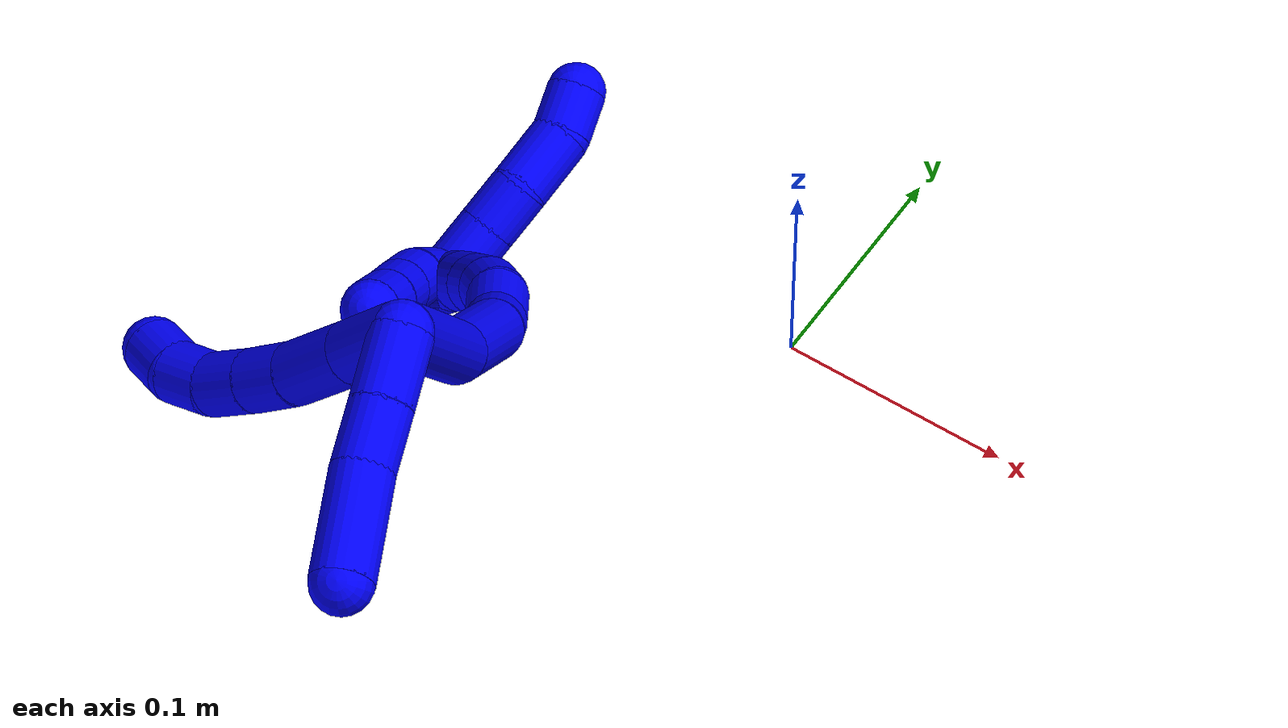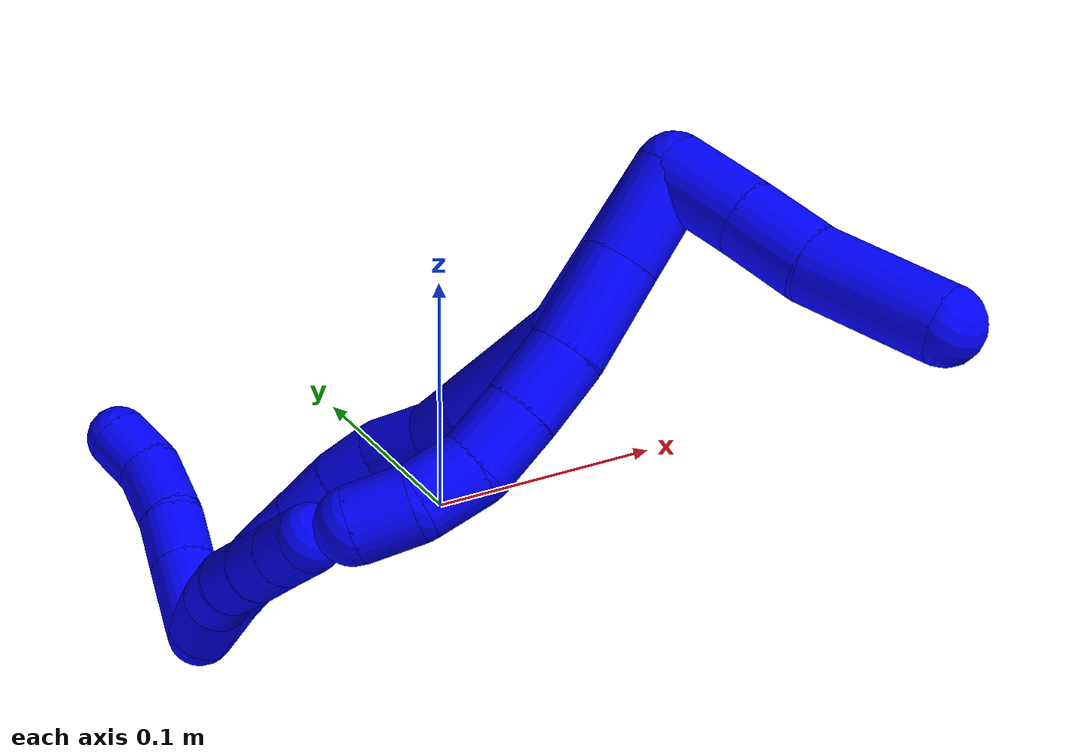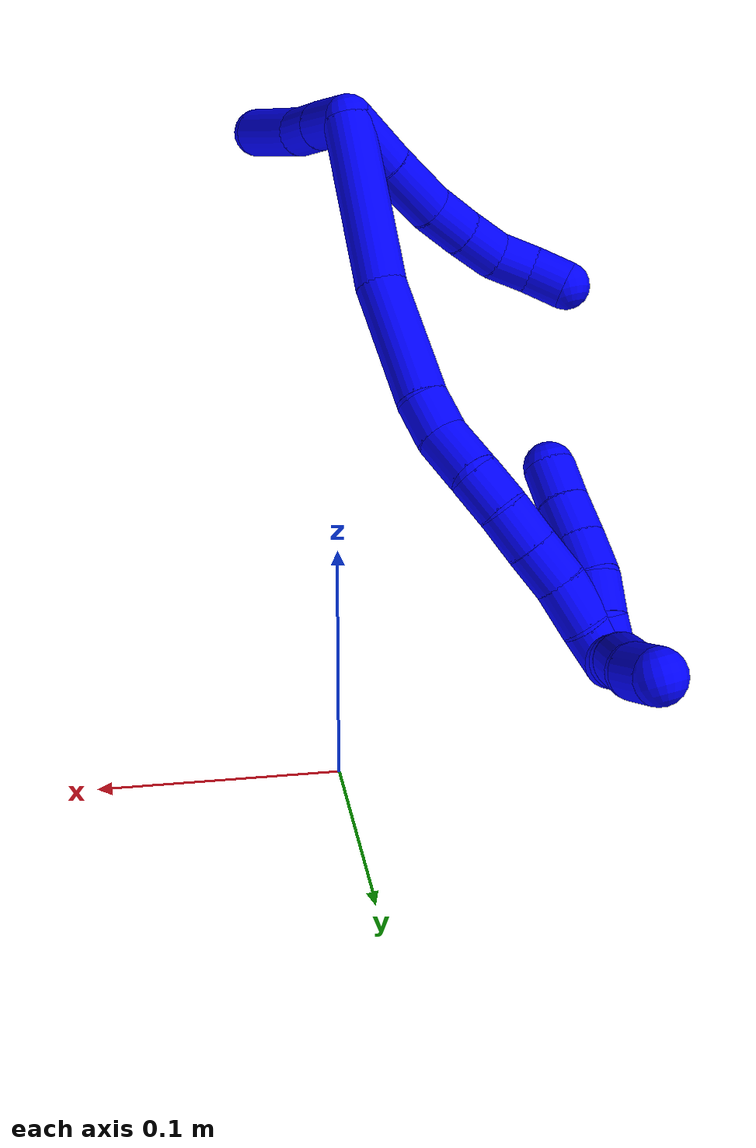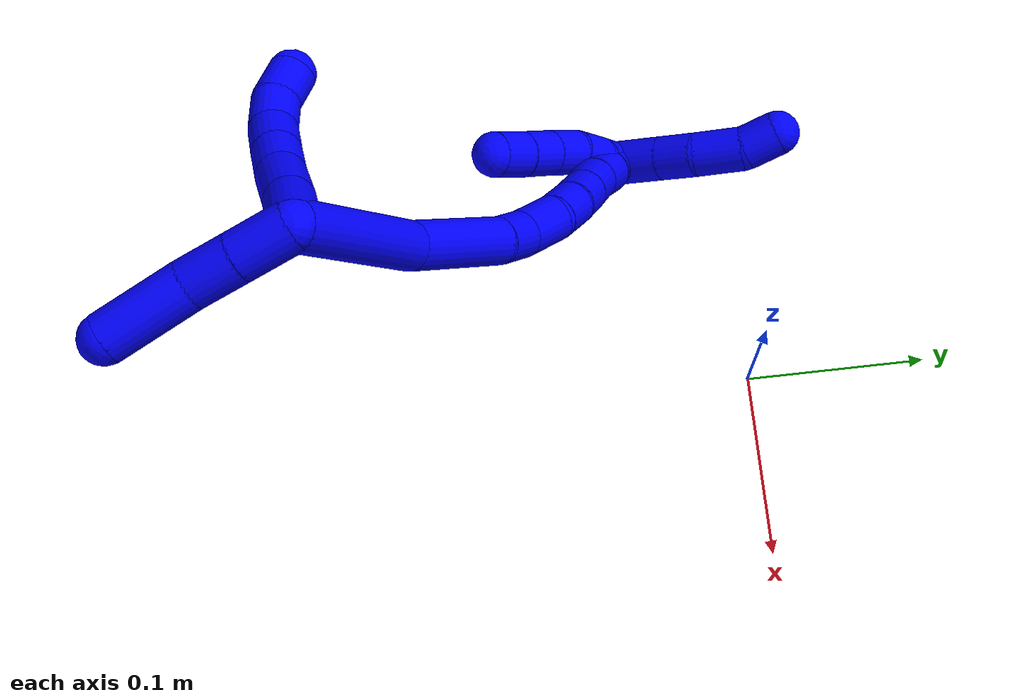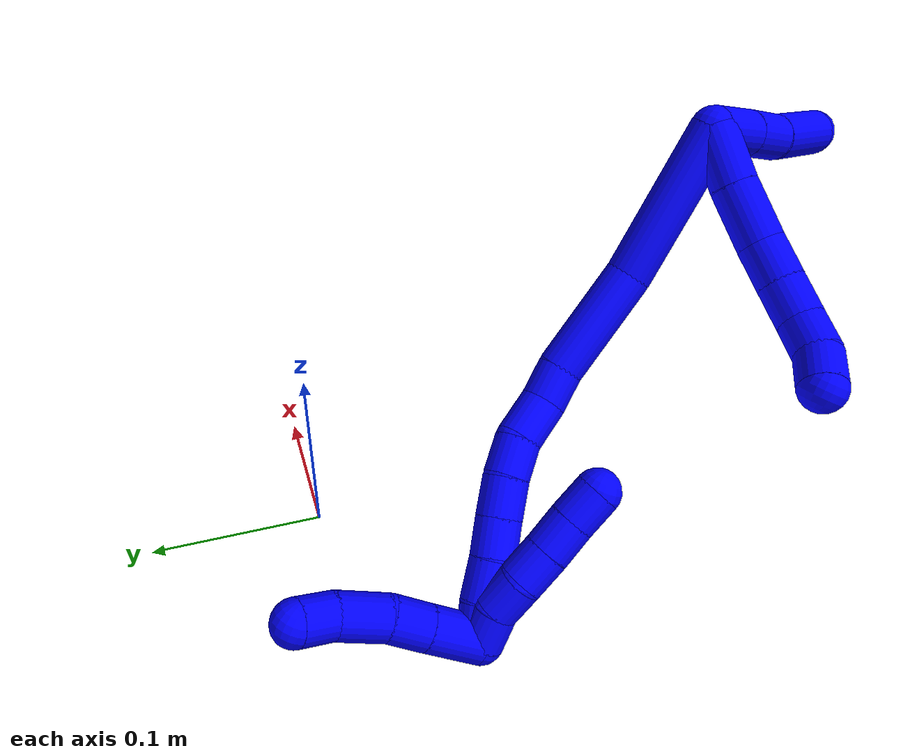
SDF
<sdf version="1.7">
 <world name="default">
  <model name="1">
   <static>0</static>
   <link name="1">
    <collision name="collision-cylinder-e_1_2_8">
     <pose>-0.01092 -0.002665 -0.011155 2.90706 -0.760905 -2.56868</pose>
     <geometry><cylinder><radius>0.0125</radius><length>0.031672</length></cylinder></geometry>
     <surface>
      <friction><ode><mu>1.16</mu><mu2>1.16</mu2><slip1>0</slip1><slip2>0</slip2></ode></friction>
      <contact><ode><kp>1e+06</kp><kd>1</kd><max_vel>0</max_vel><min_depth>0.001</min_depth></ode></contact>
     </surface>
    </collision>
    <visual name="visual-cylinder-e_1_2_8">
     <pose>-0.01092 -0.002665 -0.011155 2.90706 -0.760905 -2.56868</pose>
     <geometry><cylinder><radius>0.0125</radius><length>0.031672</length></cylinder></geometry>
     <material><ambient>0 0 1 1</ambient></material>
    </visual>
    <collision name="collision-cylinder-e_2_8_9">
     <pose>-0.03398 -0.008303 -0.032967 2.86958 -0.831735 -2.54059</pose>
     <geometry><cylinder><radius>0.0125</radius><length>0.03285</length></cylinder></geometry>
     <surface>
      <friction><ode><mu>1.16</mu><mu2>1.16</mu2><slip1>0</slip1><slip2>0</slip2></ode></friction>
      <contact><ode><kp>1e+06</kp><kd>1</kd><max_vel>0</max_vel><min_depth>0.001</min_depth></ode></contact>
     </surface>
    </collision>
    <visual name="visual-cylinder-e_2_8_9">
     <pose>-0.03398 -0.008303 -0.032967 2.86958 -0.831735 -2.54059</pose>
     <geometry><cylinder><radius>0.0125</radius><length>0.03285</length></cylinder></geometry>
     <material><ambient>0 0 1 1</ambient></material>
    </visual>
    <collision name="collision-cylinder-e_3_9_10">
     <pose>-0.055107 -0.011998 -0.050628 3.03884 -0.906198 -2.93115</pose>
     <geometry><cylinder><radius>0.0125</radius><length>0.022833</length></cylinder></geometry>
     <surface>
      <friction><ode><mu>1.16</mu><mu2>1.16</mu2><slip1>0</slip1><slip2>0</slip2></ode></friction>
      <contact><ode><kp>1e+06</kp><kd>1</kd><max_vel>0</max_vel><min_depth>0.001</min_depth></ode></contact>
     </surface>
    </collision>
    <visual name="visual-cylinder-e_3_9_10">
     <pose>-0.055107 -0.011998 -0.050628 3.03884 -0.906198 -2.93115</pose>
     <geometry><cylinder><radius>0.0125</radius><length>0.022833</length></cylinder></geometry>
     <material><ambient>0 0 1 1</ambient></material>
    </visual>
    <collision name="collision-cylinder-e_4_10_11">
     <pose>-0.072899 -0.012927 -0.064292 3.11052 -0.922976 -3.07912</pose>
     <geometry><cylinder><radius>0.0125</radius><length>0.022084</length></cylinder></geometry>
     <surface>
      <friction><ode><mu>1.16</mu><mu2>1.16</mu2><slip1>0</slip1><slip2>0</slip2></ode></friction>
      <contact><ode><kp>1e+06</kp><kd>1</kd><max_vel>0</max_vel><min_depth>0.001</min_depth></ode></contact>
     </surface>
    </collision>
    <visual name="visual-cylinder-e_4_10_11">
     <pose>-0.072899 -0.012927 -0.064292 3.11052 -0.922976 -3.07912</pose>
     <geometry><cylinder><radius>0.0125</radius><length>0.022084</length></cylinder></geometry>
     <material><ambient>0 0 1 1</ambient></material>
    </visual>
    <collision name="collision-cylinder-e_5_11_12">
     <pose>-0.08984 -0.01023 -0.076474 -2.65744 -0.916628 2.21351</pose>
     <geometry><cylinder><radius>0.0125</radius><length>0.020505</length></cylinder></geometry>
     <surface>
      <friction><ode><mu>1.16</mu><mu2>1.16</mu2><slip1>0</slip1><slip2>0</slip2></ode></friction>
      <contact><ode><kp>1e+06</kp><kd>1</kd><max_vel>0</max_vel><min_depth>0.001</min_depth></ode></contact>
     </surface>
    </collision>
    <visual name="visual-cylinder-e_5_11_12">
     <pose>-0.08984 -0.01023 -0.076474 -2.65744 -0.916628 2.21351</pose>
     <geometry><cylinder><radius>0.0125</radius><length>0.020505</length></cylinder></geometry>
     <material><ambient>0 0 1 1</ambient></material>
    </visual>
    <collision name="collision-cylinder-e_6_12_6">
     <pose>-0.103615 -0.002275 -0.088571 -2.48651 -0.597212 1.47214</pose>
     <geometry><cylinder><radius>0.0125</radius><length>0.020054</length></cylinder></geometry>
     <surface>
      <friction><ode><mu>1.16</mu><mu2>1.16</mu2><slip1>0</slip1><slip2>0</slip2></ode></friction>
      <contact><ode><kp>1e+06</kp><kd>1</kd><max_vel>0</max_vel><min_depth>0.001</min_depth></ode></contact>
     </surface>
    </collision>
    <visual name="visual-cylinder-e_6_12_6">
     <pose>-0.103615 -0.002275 -0.088571 -2.48651 -0.597212 1.47214</pose>
     <geometry><cylinder><radius>0.0125</radius><length>0.020054</length></cylinder></geometry>
     <material><ambient>0 0 1 1</ambient></material>
    </visual>
    <collision name="collision-cylinder-e_1_2_13">
     <pose>-0.002938 -0.01378 0.004166 1.27723 -0.201339 -0.149701</pose>
     <geometry><cylinder><radius>0.0125</radius><length>0.029385</length></cylinder></geometry>
     <surface>
      <friction><ode><mu>1.16</mu><mu2>1.16</mu2><slip1>0</slip1><slip2>0</slip2></ode></friction>
      <contact><ode><kp>1e+06</kp><kd>1</kd><max_vel>0</max_vel><min_depth>0.001</min_depth></ode></contact>
     </surface>
    </collision>
    <visual name="visual-cylinder-e_1_2_13">
     <pose>-0.002938 -0.01378 0.004166 1.27723 -0.201339 -0.149701</pose>
     <geometry><cylinder><radius>0.0125</radius><length>0.029385</length></cylinder></geometry>
     <material><ambient>0 0 1 1</ambient></material>
    </visual>
    <collision name="collision-cylinder-e_2_13_14">
     <pose>-0.008632 -0.03971 0.011676 1.30219 -0.215242 -0.164266</pose>
     <geometry><cylinder><radius>0.0125</radius><length>0.0258</length></cylinder></geometry>
     <surface>
      <friction><ode><mu>1.16</mu><mu2>1.16</mu2><slip1>0</slip1><slip2>0</slip2></ode></friction>
      <contact><ode><kp>1e+06</kp><kd>1</kd><max_vel>0</max_vel><min_depth>0.001</min_depth></ode></contact>
     </surface>
    </collision>
    <visual name="visual-cylinder-e_2_13_14">
     <pose>-0.008632 -0.03971 0.011676 1.30219 -0.215242 -0.164266</pose>
     <geometry><cylinder><radius>0.0125</radius><length>0.0258</length></cylinder></geometry>
     <material><ambient>0 0 1 1</ambient></material>
    </visual>
    <collision name="collision-cylinder-e_3_14_5">
     <pose>-0.013618 -0.072517 0.023413 1.18485 -0.099727 -0.067154</pose>
     <geometry><cylinder><radius>0.0125</radius><length>0.044815</length></cylinder></geometry>
     <surface>
      <friction><ode><mu>1.16</mu><mu2>1.16</mu2><slip1>0</slip1><slip2>0</slip2></ode></friction>
      <contact><ode><kp>1e+06</kp><kd>1</kd><max_vel>0</max_vel><min_depth>0.001</min_depth></ode></contact>
     </surface>
    </collision>
    <visual name="visual-cylinder-e_3_14_5">
     <pose>-0.013618 -0.072517 0.023413 1.18485 -0.099727 -0.067154</pose>
     <geometry><cylinder><radius>0.0125</radius><length>0.044815</length></cylinder></geometry>
     <material><ambient>0 0 1 1</ambient></material>
    </visual>
    <collision name="collision-cylinder-e_1_2_15">
     <pose>0.004122 0.000294 -0.042945 -3.13475 0.095688 -2.99896</pose>
     <geometry><cylinder><radius>0.0125</radius><length>0.086288</length></cylinder></geometry>
     <surface>
      <friction><ode><mu>1.16</mu><mu2>1.16</mu2><slip1>0</slip1><slip2>0</slip2></ode></friction>
      <contact><ode><kp>1e+06</kp><kd>1</kd><max_vel>0</max_vel><min_depth>0.001</min_depth></ode></contact>
     </surface>
    </collision>
    <visual name="visual-cylinder-e_1_2_15">
     <pose>0.004122 0.000294 -0.042945 -3.13475 0.095688 -2.99896</pose>
     <geometry><cylinder><radius>0.0125</radius><length>0.086288</length></cylinder></geometry>
     <material><ambient>0 0 1 1</ambient></material>
    </visual>
    <collision name="collision-cylinder-e_2_15_16">
     <pose>0.011399 0.00769 -0.115941 -2.90949 0.101806 -0.824041</pose>
     <geometry><cylinder><radius>0.0125</radius><length>0.062077</length></cylinder></geometry>
     <surface>
      <friction><ode><mu>1.16</mu><mu2>1.16</mu2><slip1>0</slip1><slip2>0</slip2></ode></friction>
      <contact><ode><kp>1e+06</kp><kd>1</kd><max_vel>0</max_vel><min_depth>0.001</min_depth></ode></contact>
     </surface>
    </collision>
    <visual name="visual-cylinder-e_2_15_16">
     <pose>0.011399 0.00769 -0.115941 -2.90949 0.101806 -0.824041</pose>
     <geometry><cylinder><radius>0.0125</radius><length>0.062077</length></cylinder></geometry>
     <material><ambient>0 0 1 1</ambient></material>
    </visual>
    <collision name="collision-cylinder-e_3_16_17">
     <pose>0.013796 0.017206 -0.155962 -2.90418 -0.073639 0.599115</pose>
     <geometry><cylinder><radius>0.0125</radius><length>0.020576</length></cylinder></geometry>
     <surface>
      <friction><ode><mu>1.16</mu><mu2>1.16</mu2><slip1>0</slip1><slip2>0</slip2></ode></friction>
      <contact><ode><kp>1e+06</kp><kd>1</kd><max_vel>0</max_vel><min_depth>0.001</min_depth></ode></contact>
     </surface>
    </collision>
    <visual name="visual-cylinder-e_3_16_17">
     <pose>0.013796 0.017206 -0.155962 -2.90418 -0.073639 0.599115</pose>
     <geometry><cylinder><radius>0.0125</radius><length>0.020576</length></cylinder></geometry>
     <material><ambient>0 0 1 1</ambient></material>
    </visual>
    <collision name="collision-cylinder-e_4_17_18">
     <pose>0.012049 0.025687 -0.176722 -2.62917 -0.079833 0.302572</pose>
     <geometry><cylinder><radius>0.0125</radius><length>0.024834</length></cylinder></geometry>
     <surface>
      <friction><ode><mu>1.16</mu><mu2>1.16</mu2><slip1>0</slip1><slip2>0</slip2></ode></friction>
      <contact><ode><kp>1e+06</kp><kd>1</kd><max_vel>0</max_vel><min_depth>0.001</min_depth></ode></contact>
     </surface>
    </collision>
    <visual name="visual-cylinder-e_4_17_18">
     <pose>0.012049 0.025687 -0.176722 -2.62917 -0.079833 0.302572</pose>
     <geometry><cylinder><radius>0.0125</radius><length>0.024834</length></cylinder></geometry>
     <material><ambient>0 0 1 1</ambient></material>
    </visual>
    <collision name="collision-cylinder-e_5_18_19">
     <pose>0.008031 0.034749 -0.197094 -2.83891 -0.292837 1.53726</pose>
     <geometry><cylinder><radius>0.0125</radius><length>0.020975</length></cylinder></geometry>
     <surface>
      <friction><ode><mu>1.16</mu><mu2>1.16</mu2><slip1>0</slip1><slip2>0</slip2></ode></friction>
      <contact><ode><kp>1e+06</kp><kd>1</kd><max_vel>0</max_vel><min_depth>0.001</min_depth></ode></contact>
     </surface>
    </collision>
    <visual name="visual-cylinder-e_5_18_19">
     <pose>0.008031 0.034749 -0.197094 -2.83891 -0.292837 1.53726</pose>
     <geometry><cylinder><radius>0.0125</radius><length>0.020975</length></cylinder></geometry>
     <material><ambient>0 0 1 1</ambient></material>
    </visual>
    <collision name="collision-cylinder-e_6_19_20">
     <pose>0.00113 0.039311 -0.216584 -2.98443 -0.368591 2.34222</pose>
     <geometry><cylinder><radius>0.0125</radius><length>0.021503</length></cylinder></geometry>
     <surface>
      <friction><ode><mu>1.16</mu><mu2>1.16</mu2><slip1>0</slip1><slip2>0</slip2></ode></friction>
      <contact><ode><kp>1e+06</kp><kd>1</kd><max_vel>0</max_vel><min_depth>0.001</min_depth></ode></contact>
     </surface>
    </collision>
    <visual name="visual-cylinder-e_6_19_20">
     <pose>0.00113 0.039311 -0.216584 -2.98443 -0.368591 2.34222</pose>
     <geometry><cylinder><radius>0.0125</radius><length>0.021503</length></cylinder></geometry>
     <material><ambient>0 0 1 1</ambient></material>
    </visual>
    <collision name="collision-cylinder-e_7_20_21">
     <pose>-0.006845 0.0424 -0.235969 -2.98272 -0.403745 2.39969</pose>
     <geometry><cylinder><radius>0.0125</radius><length>0.020877</length></cylinder></geometry>
     <surface>
      <friction><ode><mu>1.16</mu><mu2>1.16</mu2><slip1>0</slip1><slip2>0</slip2></ode></friction>
      <contact><ode><kp>1e+06</kp><kd>1</kd><max_vel>0</max_vel><min_depth>0.001</min_depth></ode></contact>
     </surface>
    </collision>
    <visual name="visual-cylinder-e_7_20_21">
     <pose>-0.006845 0.0424 -0.235969 -2.98272 -0.403745 2.39969</pose>
     <geometry><cylinder><radius>0.0125</radius><length>0.020877</length></cylinder></geometry>
     <material><ambient>0 0 1 1</ambient></material>
    </visual>
    <collision name="collision-cylinder-e_8_21_22">
     <pose>-0.014195 0.045071 -0.256273 -3.03558 -0.290038 2.44466</pose>
     <geometry><cylinder><radius>0.0125</radius><length>0.022722</length></cylinder></geometry>
     <surface>
      <friction><ode><mu>1.16</mu><mu2>1.16</mu2><slip1>0</slip1><slip2>0</slip2></ode></friction>
      <contact><ode><kp>1e+06</kp><kd>1</kd><max_vel>0</max_vel><min_depth>0.001</min_depth></ode></contact>
     </surface>
    </collision>
    <visual name="visual-cylinder-e_8_21_22">
     <pose>-0.014195 0.045071 -0.256273 -3.03558 -0.290038 2.44466</pose>
     <geometry><cylinder><radius>0.0125</radius><length>0.022722</length></cylinder></geometry>
     <material><ambient>0 0 1 1</ambient></material>
    </visual>
    <collision name="collision-cylinder-e_9_22_1">
     <pose>-0.021467 0.046254 -0.276334 -3.13816 -0.410815 3.1251</pose>
     <geometry><cylinder><radius>0.0125</radius><length>0.020149</length></cylinder></geometry>
     <surface>
      <friction><ode><mu>1.16</mu><mu2>1.16</mu2><slip1>0</slip1><slip2>0</slip2></ode></friction>
      <contact><ode><kp>1e+06</kp><kd>1</kd><max_vel>0</max_vel><min_depth>0.001</min_depth></ode></contact>
     </surface>
    </collision>
    <visual name="visual-cylinder-e_9_22_1">
     <pose>-0.021467 0.046254 -0.276334 -3.13816 -0.410815 3.1251</pose>
     <geometry><cylinder><radius>0.0125</radius><length>0.020149</length></cylinder></geometry>
     <material><ambient>0 0 1 1</ambient></material>
    </visual>
    <collision name="collision-cylinder-e_1_1_23">
     <pose>-0.0256 0.046884 -0.275589 -0.059824 -0.010946 0.000328</pose>
     <geometry><cylinder><radius>0.0125</radius><length>0.02</length></cylinder></geometry>
     <surface>
      <friction><ode><mu>1.16</mu><mu2>1.16</mu2><slip1>0</slip1><slip2>0</slip2></ode></friction>
      <contact><ode><kp>1e+06</kp><kd>1</kd><max_vel>0</max_vel><min_depth>0.001</min_depth></ode></contact>
     </surface>
    </collision>
    <visual name="visual-cylinder-e_1_1_23">
     <pose>-0.0256 0.046884 -0.275589 -0.059824 -0.010946 0.000328</pose>
     <geometry><cylinder><radius>0.0125</radius><length>0.02</length></cylinder></geometry>
     <material><ambient>0 0 1 1</ambient></material>
    </visual>
    <collision name="collision-cylinder-e_2_23_24">
     <pose>-0.028205 0.046387 -0.255986 0.113291 -0.252246 -0.01438</pose>
     <geometry><cylinder><radius>0.0125</radius><length>0.02</length></cylinder></geometry>
     <surface>
      <friction><ode><mu>1.16</mu><mu2>1.16</mu2><slip1>0</slip1><slip2>0</slip2></ode></friction>
      <contact><ode><kp>1e+06</kp><kd>1</kd><max_vel>0</max_vel><min_depth>0.001</min_depth></ode></contact>
     </surface>
    </collision>
    <visual name="visual-cylinder-e_2_23_24">
     <pose>-0.028205 0.046387 -0.255986 0.113291 -0.252246 -0.01438</pose>
     <geometry><cylinder><radius>0.0125</radius><length>0.02</length></cylinder></geometry>
     <material><ambient>0 0 1 1</ambient></material>
    </visual>
    <collision name="collision-cylinder-e_3_24_25">
     <pose>-0.032392 0.04217 -0.237016 0.32232 -0.169919 -0.027689</pose>
     <geometry><cylinder><radius>0.0125</radius><length>0.02</length></cylinder></geometry>
     <surface>
      <friction><ode><mu>1.16</mu><mu2>1.16</mu2><slip1>0</slip1><slip2>0</slip2></ode></friction>
      <contact><ode><kp>1e+06</kp><kd>1</kd><max_vel>0</max_vel><min_depth>0.001</min_depth></ode></contact>
     </surface>
    </collision>
    <visual name="visual-cylinder-e_3_24_25">
     <pose>-0.032392 0.04217 -0.237016 0.32232 -0.169919 -0.027689</pose>
     <geometry><cylinder><radius>0.0125</radius><length>0.02</length></cylinder></geometry>
     <material><ambient>0 0 1 1</ambient></material>
    </visual>
    <collision name="collision-cylinder-e_4_25_26">
     <pose>-0.035329 0.03602 -0.218219 0.310168 -0.124925 -0.019556</pose>
     <geometry><cylinder><radius>0.0125</radius><length>0.02</length></cylinder></geometry>
     <surface>
      <friction><ode><mu>1.16</mu><mu2>1.16</mu2><slip1>0</slip1><slip2>0</slip2></ode></friction>
      <contact><ode><kp>1e+06</kp><kd>1</kd><max_vel>0</max_vel><min_depth>0.001</min_depth></ode></contact>
     </surface>
    </collision>
    <visual name="visual-cylinder-e_4_25_26">
     <pose>-0.035329 0.03602 -0.218219 0.310168 -0.124925 -0.019556</pose>
     <geometry><cylinder><radius>0.0125</radius><length>0.02</length></cylinder></geometry>
     <material><ambient>0 0 1 1</ambient></material>
    </visual>
    <collision name="collision-cylinder-e_5_26_4">
     <pose>-0.038324 0.029989 -0.199393 0.309888 -0.175815 -0.027531</pose>
     <geometry><cylinder><radius>0.0125</radius><length>0.02</length></cylinder></geometry>
     <surface>
      <friction><ode><mu>1.16</mu><mu2>1.16</mu2><slip1>0</slip1><slip2>0</slip2></ode></friction>
      <contact><ode><kp>1e+06</kp><kd>1</kd><max_vel>0</max_vel><min_depth>0.001</min_depth></ode></contact>
     </surface>
    </collision>
    <visual name="visual-cylinder-e_5_26_4">
     <pose>-0.038324 0.029989 -0.199393 0.309888 -0.175815 -0.027531</pose>
     <geometry><cylinder><radius>0.0125</radius><length>0.02</length></cylinder></geometry>
     <material><ambient>0 0 1 1</ambient></material>
    </visual>
    <collision name="collision-cylinder-e_1_1_27">
     <pose>-0.016033 0.058188 -0.285829 -1.59254 0.671341 -0.684984</pose>
     <geometry><cylinder><radius>0.0125</radius><length>0.030408</length></cylinder></geometry>
     <surface>
      <friction><ode><mu>1.16</mu><mu2>1.16</mu2><slip1>0</slip1><slip2>0</slip2></ode></friction>
      <contact><ode><kp>1e+06</kp><kd>1</kd><max_vel>0</max_vel><min_depth>0.001</min_depth></ode></contact>
     </surface>
    </collision>
    <visual name="visual-cylinder-e_1_1_27">
     <pose>-0.016033 0.058188 -0.285829 -1.59254 0.671341 -0.684984</pose>
     <geometry><cylinder><radius>0.0125</radius><length>0.030408</length></cylinder></geometry>
     <material><ambient>0 0 1 1</ambient></material>
    </visual>
    <collision name="collision-cylinder-e_2_27_28">
     <pose>0.000112 0.078445 -0.286078 -1.56956 0.675022 -0.674247</pose>
     <geometry><cylinder><radius>0.0125</radius><length>0.021404</length></cylinder></geometry>
     <surface>
      <friction><ode><mu>1.16</mu><mu2>1.16</mu2><slip1>0</slip1><slip2>0</slip2></ode></friction>
      <contact><ode><kp>1e+06</kp><kd>1</kd><max_vel>0</max_vel><min_depth>0.001</min_depth></ode></contact>
     </surface>
    </collision>
    <visual name="visual-cylinder-e_2_27_28">
     <pose>0.000112 0.078445 -0.286078 -1.56956 0.675022 -0.674247</pose>
     <geometry><cylinder><radius>0.0125</radius><length>0.021404</length></cylinder></geometry>
     <material><ambient>0 0 1 1</ambient></material>
    </visual>
    <collision name="collision-cylinder-e_3_28_29">
     <pose>0.014861 0.097892 -0.288741 -1.80729 0.615079 -0.766624</pose>
     <geometry><cylinder><radius>0.0125</radius><length>0.02794</length></cylinder></geometry>
     <surface>
      <friction><ode><mu>1.16</mu><mu2>1.16</mu2><slip1>0</slip1><slip2>0</slip2></ode></friction>
      <contact><ode><kp>1e+06</kp><kd>1</kd><max_vel>0</max_vel><min_depth>0.001</min_depth></ode></contact>
     </surface>
    </collision>
    <visual name="visual-cylinder-e_3_28_29">
     <pose>0.014861 0.097892 -0.288741 -1.80729 0.615079 -0.766624</pose>
     <geometry><cylinder><radius>0.0125</radius><length>0.02794</length></cylinder></geometry>
     <material><ambient>0 0 1 1</ambient></material>
    </visual>
    <collision name="collision-cylinder-e_4_29_3">
     <pose>0.025791 0.11843 -0.293657 -1.8039 0.287275 -0.361979</pose>
     <geometry><cylinder><radius>0.0125</radius><length>0.020248</length></cylinder></geometry>
     <surface>
      <friction><ode><mu>1.16</mu><mu2>1.16</mu2><slip1>0</slip1><slip2>0</slip2></ode></friction>
      <contact><ode><kp>1e+06</kp><kd>1</kd><max_vel>0</max_vel><min_depth>0.001</min_depth></ode></contact>
     </surface>
    </collision>
    <visual name="visual-cylinder-e_4_29_3">
     <pose>0.025791 0.11843 -0.293657 -1.8039 0.287275 -0.361979</pose>
     <geometry><cylinder><radius>0.0125</radius><length>0.020248</length></cylinder></geometry>
     <material><ambient>0 0 1 1</ambient></material>
    </visual>
    <collision name="collision-sphere-3">
     <pose>0.028659 0.127877 -0.295899 0 -0 0</pose>
     <geometry><sphere><radius>0.0125</radius></sphere></geometry>
     <surface>
      <friction><ode><mu>1.16</mu><mu2>1.16</mu2><slip1>0</slip1><slip2>0</slip2></ode></friction>
      <contact><ode><kp>1e+06</kp><kd>1</kd><max_vel>0</max_vel><min_depth>0.001</min_depth></ode></contact>
     </surface>
    </collision>
    <visual name="visual-sphere-3">
     <pose>0.028659 0.127877 -0.295899 0 -0 0</pose>
     <geometry><sphere><radius>0.0125</radius></sphere></geometry>
     <material><ambient>0 0 1 1</ambient></material>
    </visual>
    <collision name="collision-sphere-29">
     <pose>0.022922 0.108983 -0.291414 0 -0 0</pose>
     <geometry><sphere><radius>0.0125</radius></sphere></geometry>
     <surface>
      <friction><ode><mu>1.16</mu><mu2>1.16</mu2><slip1>0</slip1><slip2>0</slip2></ode></friction>
      <contact><ode><kp>1e+06</kp><kd>1</kd><max_vel>0</max_vel><min_depth>0.001</min_depth></ode></contact>
     </surface>
    </collision>
    <visual name="visual-sphere-29">
     <pose>0.022922 0.108983 -0.291414 0 -0 0</pose>
     <geometry><sphere><radius>0.0125</radius></sphere></geometry>
     <material><ambient>0 0 1 1</ambient></material>
    </visual>
    <collision name="collision-sphere-28">
     <pose>0.0068 0.0868 -0.286067 0 -0 0</pose>
     <geometry><sphere><radius>0.0125</radius></sphere></geometry>
     <surface>
      <friction><ode><mu>1.16</mu><mu2>1.16</mu2><slip1>0</slip1><slip2>0</slip2></ode></friction>
      <contact><ode><kp>1e+06</kp><kd>1</kd><max_vel>0</max_vel><min_depth>0.001</min_depth></ode></contact>
     </surface>
    </collision>
    <visual name="visual-sphere-28">
     <pose>0.0068 0.0868 -0.286067 0 -0 0</pose>
     <geometry><sphere><radius>0.0125</radius></sphere></geometry>
     <material><ambient>0 0 1 1</ambient></material>
    </visual>
    <collision name="collision-sphere-27">
     <pose>-0.006576 0.070089 -0.286088 0 -0 0</pose>
     <geometry><sphere><radius>0.0125</radius></sphere></geometry>
     <surface>
      <friction><ode><mu>1.16</mu><mu2>1.16</mu2><slip1>0</slip1><slip2>0</slip2></ode></friction>
      <contact><ode><kp>1e+06</kp><kd>1</kd><max_vel>0</max_vel><min_depth>0.001</min_depth></ode></contact>
     </surface>
    </collision>
    <visual name="visual-sphere-27">
     <pose>-0.006576 0.070089 -0.286088 0 -0 0</pose>
     <geometry><sphere><radius>0.0125</radius></sphere></geometry>
     <material><ambient>0 0 1 1</ambient></material>
    </visual>
    <collision name="collision-sphere-4">
     <pose>-0.040073 0.026986 -0.190017 0 -0 0</pose>
     <geometry><sphere><radius>0.0125</radius></sphere></geometry>
     <surface>
      <friction><ode><mu>1.16</mu><mu2>1.16</mu2><slip1>0</slip1><slip2>0</slip2></ode></friction>
      <contact><ode><kp>1e+06</kp><kd>1</kd><max_vel>0</max_vel><min_depth>0.001</min_depth></ode></contact>
     </surface>
    </collision>
    <visual name="visual-sphere-4">
     <pose>-0.040073 0.026986 -0.190017 0 -0 0</pose>
     <geometry><sphere><radius>0.0125</radius></sphere></geometry>
     <material><ambient>0 0 1 1</ambient></material>
    </visual>
    <collision name="collision-sphere-26">
     <pose>-0.036575 0.032991 -0.20877 0 -0 0</pose>
     <geometry><sphere><radius>0.0125</radius></sphere></geometry>
     <surface>
      <friction><ode><mu>1.16</mu><mu2>1.16</mu2><slip1>0</slip1><slip2>0</slip2></ode></friction>
      <contact><ode><kp>1e+06</kp><kd>1</kd><max_vel>0</max_vel><min_depth>0.001</min_depth></ode></contact>
     </surface>
    </collision>
    <visual name="visual-sphere-26">
     <pose>-0.036575 0.032991 -0.20877 0 -0 0</pose>
     <geometry><sphere><radius>0.0125</radius></sphere></geometry>
     <material><ambient>0 0 1 1</ambient></material>
    </visual>
    <collision name="collision-sphere-25">
     <pose>-0.034083 0.039048 -0.227668 0 -0 0</pose>
     <geometry><sphere><radius>0.0125</radius></sphere></geometry>
     <surface>
      <friction><ode><mu>1.16</mu><mu2>1.16</mu2><slip1>0</slip1><slip2>0</slip2></ode></friction>
      <contact><ode><kp>1e+06</kp><kd>1</kd><max_vel>0</max_vel><min_depth>0.001</min_depth></ode></contact>
     </surface>
    </collision>
    <visual name="visual-sphere-25">
     <pose>-0.034083 0.039048 -0.227668 0 -0 0</pose>
     <geometry><sphere><radius>0.0125</radius></sphere></geometry>
     <material><ambient>0 0 1 1</ambient></material>
    </visual>
    <collision name="collision-sphere-24">
     <pose>-0.030701 0.045292 -0.246364 0 -0 0</pose>
     <geometry><sphere><radius>0.0125</radius></sphere></geometry>
     <surface>
      <friction><ode><mu>1.16</mu><mu2>1.16</mu2><slip1>0</slip1><slip2>0</slip2></ode></friction>
      <contact><ode><kp>1e+06</kp><kd>1</kd><max_vel>0</max_vel><min_depth>0.001</min_depth></ode></contact>
     </surface>
    </collision>
    <visual name="visual-sphere-24">
     <pose>-0.030701 0.045292 -0.246364 0 -0 0</pose>
     <geometry><sphere><radius>0.0125</radius></sphere></geometry>
     <material><ambient>0 0 1 1</ambient></material>
    </visual>
    <collision name="collision-sphere-23">
     <pose>-0.025709 0.047482 -0.265607 0 -0 0</pose>
     <geometry><sphere><radius>0.0125</radius></sphere></geometry>
     <surface>
      <friction><ode><mu>1.16</mu><mu2>1.16</mu2><slip1>0</slip1><slip2>0</slip2></ode></friction>
      <contact><ode><kp>1e+06</kp><kd>1</kd><max_vel>0</max_vel><min_depth>0.001</min_depth></ode></contact>
     </surface>
    </collision>
    <visual name="visual-sphere-23">
     <pose>-0.025709 0.047482 -0.265607 0 -0 0</pose>
     <geometry><sphere><radius>0.0125</radius></sphere></geometry>
     <material><ambient>0 0 1 1</ambient></material>
    </visual>
    <collision name="collision-sphere-1">
     <pose>-0.02549 0.046286 -0.28557 0 -0 0</pose>
     <geometry><sphere><radius>0.0125</radius></sphere></geometry>
     <surface>
      <friction><ode><mu>1.16</mu><mu2>1.16</mu2><slip1>0</slip1><slip2>0</slip2></ode></friction>
      <contact><ode><kp>1e+06</kp><kd>1</kd><max_vel>0</max_vel><min_depth>0.001</min_depth></ode></contact>
     </surface>
    </collision>
    <visual name="visual-sphere-1">
     <pose>-0.02549 0.046286 -0.28557 0 -0 0</pose>
     <geometry><sphere><radius>0.0125</radius></sphere></geometry>
     <material><ambient>0 0 1 1</ambient></material>
    </visual>
    <collision name="collision-sphere-22">
     <pose>-0.017444 0.046223 -0.267098 0 -0 0</pose>
     <geometry><sphere><radius>0.0125</radius></sphere></geometry>
     <surface>
      <friction><ode><mu>1.16</mu><mu2>1.16</mu2><slip1>0</slip1><slip2>0</slip2></ode></friction>
      <contact><ode><kp>1e+06</kp><kd>1</kd><max_vel>0</max_vel><min_depth>0.001</min_depth></ode></contact>
     </surface>
    </collision>
    <visual name="visual-sphere-22">
     <pose>-0.017444 0.046223 -0.267098 0 -0 0</pose>
     <geometry><sphere><radius>0.0125</radius></sphere></geometry>
     <material><ambient>0 0 1 1</ambient></material>
    </visual>
    <collision name="collision-sphere-21">
     <pose>-0.010946 0.043919 -0.245447 0 -0 0</pose>
     <geometry><sphere><radius>0.0125</radius></sphere></geometry>
     <surface>
      <friction><ode><mu>1.16</mu><mu2>1.16</mu2><slip1>0</slip1><slip2>0</slip2></ode></friction>
      <contact><ode><kp>1e+06</kp><kd>1</kd><max_vel>0</max_vel><min_depth>0.001</min_depth></ode></contact>
     </surface>
    </collision>
    <visual name="visual-sphere-21">
     <pose>-0.010946 0.043919 -0.245447 0 -0 0</pose>
     <geometry><sphere><radius>0.0125</radius></sphere></geometry>
     <material><ambient>0 0 1 1</ambient></material>
    </visual>
    <collision name="collision-sphere-12">
     <pose>-0.097976 -0.007326 -0.081996 0 -0 0</pose>
     <geometry><sphere><radius>0.0125</radius></sphere></geometry>
     <surface>
      <friction><ode><mu>1.16</mu><mu2>1.16</mu2><slip1>0</slip1><slip2>0</slip2></ode></friction>
      <contact><ode><kp>1e+06</kp><kd>1</kd><max_vel>0</max_vel><min_depth>0.001</min_depth></ode></contact>
     </surface>
    </collision>
    <visual name="visual-sphere-12">
     <pose>-0.097976 -0.007326 -0.081996 0 -0 0</pose>
     <geometry><sphere><radius>0.0125</radius></sphere></geometry>
     <material><ambient>0 0 1 1</ambient></material>
    </visual>
    <collision name="collision-sphere-11">
     <pose>-0.081704 -0.013134 -0.070952 0 -0 0</pose>
     <geometry><sphere><radius>0.0125</radius></sphere></geometry>
     <surface>
      <friction><ode><mu>1.16</mu><mu2>1.16</mu2><slip1>0</slip1><slip2>0</slip2></ode></friction>
      <contact><ode><kp>1e+06</kp><kd>1</kd><max_vel>0</max_vel><min_depth>0.001</min_depth></ode></contact>
     </surface>
    </collision>
    <visual name="visual-sphere-11">
     <pose>-0.081704 -0.013134 -0.070952 0 -0 0</pose>
     <geometry><sphere><radius>0.0125</radius></sphere></geometry>
     <material><ambient>0 0 1 1</ambient></material>
    </visual>
    <collision name="collision-sphere-10">
     <pose>-0.064094 -0.01272 -0.057632 0 -0 0</pose>
     <geometry><sphere><radius>0.0125</radius></sphere></geometry>
     <surface>
      <friction><ode><mu>1.16</mu><mu2>1.16</mu2><slip1>0</slip1><slip2>0</slip2></ode></friction>
      <contact><ode><kp>1e+06</kp><kd>1</kd><max_vel>0</max_vel><min_depth>0.001</min_depth></ode></contact>
     </surface>
    </collision>
    <visual name="visual-sphere-10">
     <pose>-0.064094 -0.01272 -0.057632 0 -0 0</pose>
     <geometry><sphere><radius>0.0125</radius></sphere></geometry>
     <material><ambient>0 0 1 1</ambient></material>
    </visual>
    <collision name="collision-sphere-9">
     <pose>-0.04612 -0.011276 -0.043624 0 -0 0</pose>
     <geometry><sphere><radius>0.0125</radius></sphere></geometry>
     <surface>
      <friction><ode><mu>1.16</mu><mu2>1.16</mu2><slip1>0</slip1><slip2>0</slip2></ode></friction>
      <contact><ode><kp>1e+06</kp><kd>1</kd><max_vel>0</max_vel><min_depth>0.001</min_depth></ode></contact>
     </surface>
    </collision>
    <visual name="visual-sphere-9">
     <pose>-0.04612 -0.011276 -0.043624 0 -0 0</pose>
     <geometry><sphere><radius>0.0125</radius></sphere></geometry>
     <material><ambient>0 0 1 1</ambient></material>
    </visual>
    <collision name="collision-sphere-2">
     <geometry><sphere><radius>0.0125</radius></sphere></geometry>
     <surface>
      <friction><ode><mu>1.16</mu><mu2>1.16</mu2><slip1>0</slip1><slip2>0</slip2></ode></friction>
      <contact><ode><kp>1e+06</kp><kd>1</kd><max_vel>0</max_vel><min_depth>0.001</min_depth></ode></contact>
     </surface>
    </collision>
    <visual name="visual-sphere-2">
     <geometry><sphere><radius>0.0125</radius></sphere></geometry>
     <material><ambient>0 0 1 1</ambient></material>
    </visual>
    <collision name="collision-sphere-19">
     <pose>0.005004 0.037742 -0.206679 0 -0 0</pose>
     <geometry><sphere><radius>0.0125</radius></sphere></geometry>
     <surface>
      <friction><ode><mu>1.16</mu><mu2>1.16</mu2><slip1>0</slip1><slip2>0</slip2></ode></friction>
      <contact><ode><kp>1e+06</kp><kd>1</kd><max_vel>0</max_vel><min_depth>0.001</min_depth></ode></contact>
     </surface>
    </collision>
    <visual name="visual-sphere-19">
     <pose>0.005004 0.037742 -0.206679 0 -0 0</pose>
     <geometry><sphere><radius>0.0125</radius></sphere></geometry>
     <material><ambient>0 0 1 1</ambient></material>
    </visual>
    <collision name="collision-sphere-8">
     <pose>-0.021841 -0.00533 -0.02231 0 -0 0</pose>
     <geometry><sphere><radius>0.0125</radius></sphere></geometry>
     <surface>
      <friction><ode><mu>1.16</mu><mu2>1.16</mu2><slip1>0</slip1><slip2>0</slip2></ode></friction>
      <contact><ode><kp>1e+06</kp><kd>1</kd><max_vel>0</max_vel><min_depth>0.001</min_depth></ode></contact>
     </surface>
    </collision>
    <visual name="visual-sphere-8">
     <pose>-0.021841 -0.00533 -0.02231 0 -0 0</pose>
     <geometry><sphere><radius>0.0125</radius></sphere></geometry>
     <material><ambient>0 0 1 1</ambient></material>
    </visual>
    <collision name="collision-sphere-6">
     <pose>-0.109253 0.002776 -0.095146 0 -0 0</pose>
     <geometry><sphere><radius>0.0125</radius></sphere></geometry>
     <surface>
      <friction><ode><mu>1.16</mu><mu2>1.16</mu2><slip1>0</slip1><slip2>0</slip2></ode></friction>
      <contact><ode><kp>1e+06</kp><kd>1</kd><max_vel>0</max_vel><min_depth>0.001</min_depth></ode></contact>
     </surface>
    </collision>
    <visual name="visual-sphere-6">
     <pose>-0.109253 0.002776 -0.095146 0 -0 0</pose>
     <geometry><sphere><radius>0.0125</radius></sphere></geometry>
     <material><ambient>0 0 1 1</ambient></material>
    </visual>
    <collision name="collision-sphere-13">
     <pose>-0.005876 -0.02756 0.008331 0 -0 0</pose>
     <geometry><sphere><radius>0.0125</radius></sphere></geometry>
     <surface>
      <friction><ode><mu>1.16</mu><mu2>1.16</mu2><slip1>0</slip1><slip2>0</slip2></ode></friction>
      <contact><ode><kp>1e+06</kp><kd>1</kd><max_vel>0</max_vel><min_depth>0.001</min_depth></ode></contact>
     </surface>
    </collision>
    <visual name="visual-sphere-13">
     <pose>-0.005876 -0.02756 0.008331 0 -0 0</pose>
     <geometry><sphere><radius>0.0125</radius></sphere></geometry>
     <material><ambient>0 0 1 1</ambient></material>
    </visual>
    <collision name="collision-sphere-14">
     <pose>-0.011387 -0.05186 0.01502 0 -0 0</pose>
     <geometry><sphere><radius>0.0125</radius></sphere></geometry>
     <surface>
      <friction><ode><mu>1.16</mu><mu2>1.16</mu2><slip1>0</slip1><slip2>0</slip2></ode></friction>
      <contact><ode><kp>1e+06</kp><kd>1</kd><max_vel>0</max_vel><min_depth>0.001</min_depth></ode></contact>
     </surface>
    </collision>
    <visual name="visual-sphere-14">
     <pose>-0.011387 -0.05186 0.01502 0 -0 0</pose>
     <geometry><sphere><radius>0.0125</radius></sphere></geometry>
     <material><ambient>0 0 1 1</ambient></material>
    </visual>
    <collision name="collision-sphere-5">
     <pose>-0.015849 -0.093173 0.031806 0 -0 0</pose>
     <geometry><sphere><radius>0.0125</radius></sphere></geometry>
     <surface>
      <friction><ode><mu>1.16</mu><mu2>1.16</mu2><slip1>0</slip1><slip2>0</slip2></ode></friction>
      <contact><ode><kp>1e+06</kp><kd>1</kd><max_vel>0</max_vel><min_depth>0.001</min_depth></ode></contact>
     </surface>
    </collision>
    <visual name="visual-sphere-5">
     <pose>-0.015849 -0.093173 0.031806 0 -0 0</pose>
     <geometry><sphere><radius>0.0125</radius></sphere></geometry>
     <material><ambient>0 0 1 1</ambient></material>
    </visual>
    <collision name="collision-sphere-15">
     <pose>0.008244 0.000588 -0.085891 0 -0 0</pose>
     <geometry><sphere><radius>0.0125</radius></sphere></geometry>
     <surface>
      <friction><ode><mu>1.16</mu><mu2>1.16</mu2><slip1>0</slip1><slip2>0</slip2></ode></friction>
      <contact><ode><kp>1e+06</kp><kd>1</kd><max_vel>0</max_vel><min_depth>0.001</min_depth></ode></contact>
     </surface>
    </collision>
    <visual name="visual-sphere-15">
     <pose>0.008244 0.000588 -0.085891 0 -0 0</pose>
     <geometry><sphere><radius>0.0125</radius></sphere></geometry>
     <material><ambient>0 0 1 1</ambient></material>
    </visual>
    <collision name="collision-sphere-16">
     <pose>0.014553 0.014793 -0.14599 0 -0 0</pose>
     <geometry><sphere><radius>0.0125</radius></sphere></geometry>
     <surface>
      <friction><ode><mu>1.16</mu><mu2>1.16</mu2><slip1>0</slip1><slip2>0</slip2></ode></friction>
      <contact><ode><kp>1e+06</kp><kd>1</kd><max_vel>0</max_vel><min_depth>0.001</min_depth></ode></contact>
     </surface>
    </collision>
    <visual name="visual-sphere-16">
     <pose>0.014553 0.014793 -0.14599 0 -0 0</pose>
     <geometry><sphere><radius>0.0125</radius></sphere></geometry>
     <material><ambient>0 0 1 1</ambient></material>
    </visual>
    <collision name="collision-sphere-17">
     <pose>0.013039 0.019619 -0.165935 0 -0 0</pose>
     <geometry><sphere><radius>0.0125</radius></sphere></geometry>
     <surface>
      <friction><ode><mu>1.16</mu><mu2>1.16</mu2><slip1>0</slip1><slip2>0</slip2></ode></friction>
      <contact><ode><kp>1e+06</kp><kd>1</kd><max_vel>0</max_vel><min_depth>0.001</min_depth></ode></contact>
     </surface>
    </collision>
    <visual name="visual-sphere-17">
     <pose>0.013039 0.019619 -0.165935 0 -0 0</pose>
     <geometry><sphere><radius>0.0125</radius></sphere></geometry>
     <material><ambient>0 0 1 1</ambient></material>
    </visual>
    <collision name="collision-sphere-18">
     <pose>0.011059 0.031756 -0.18751 0 -0 0</pose>
     <geometry><sphere><radius>0.0125</radius></sphere></geometry>
     <surface>
      <friction><ode><mu>1.16</mu><mu2>1.16</mu2><slip1>0</slip1><slip2>0</slip2></ode></friction>
      <contact><ode><kp>1e+06</kp><kd>1</kd><max_vel>0</max_vel><min_depth>0.001</min_depth></ode></contact>
     </surface>
    </collision>
    <visual name="visual-sphere-18">
     <pose>0.011059 0.031756 -0.18751 0 -0 0</pose>
     <geometry><sphere><radius>0.0125</radius></sphere></geometry>
     <material><ambient>0 0 1 1</ambient></material>
    </visual>
    <collision name="collision-sphere-20">
     <pose>-0.002744 0.040881 -0.22649 0 -0 0</pose>
     <geometry><sphere><radius>0.0125</radius></sphere></geometry>
     <surface>
      <friction><ode><mu>1.16</mu><mu2>1.16</mu2><slip1>0</slip1><slip2>0</slip2></ode></friction>
      <contact><ode><kp>1e+06</kp><kd>1</kd><max_vel>0</max_vel><min_depth>0.001</min_depth></ode></contact>
     </surface>
    </collision>
    <visual name="visual-sphere-20">
     <pose>-0.002744 0.040881 -0.22649 0 -0 0</pose>
     <geometry><sphere><radius>0.0125</radius></sphere></geometry>
     <material><ambient>0 0 1 1</ambient></material>
    </visual>
    <inertial>
     <pose>-0.014631 0.016892 -0.13606 0 -0 0</pose>
     <mass>0.75</mass>
     <inertia>
      <ixx>-5.6e-05</ixx>
      <ixy>0</ixy>
      <ixz>0</ixz>
      <iyy>4.7e-05</iyy>
      <iyz>0</iyz>
      <izz>-1.7e-05</izz>
     </inertia>
    </inertial>
   </link>
   <pose>-0.035612 -0.220023 0.233901 0.540645 -0.091307 0.521616</pose>
  </model>
 </world>
</sdf>
